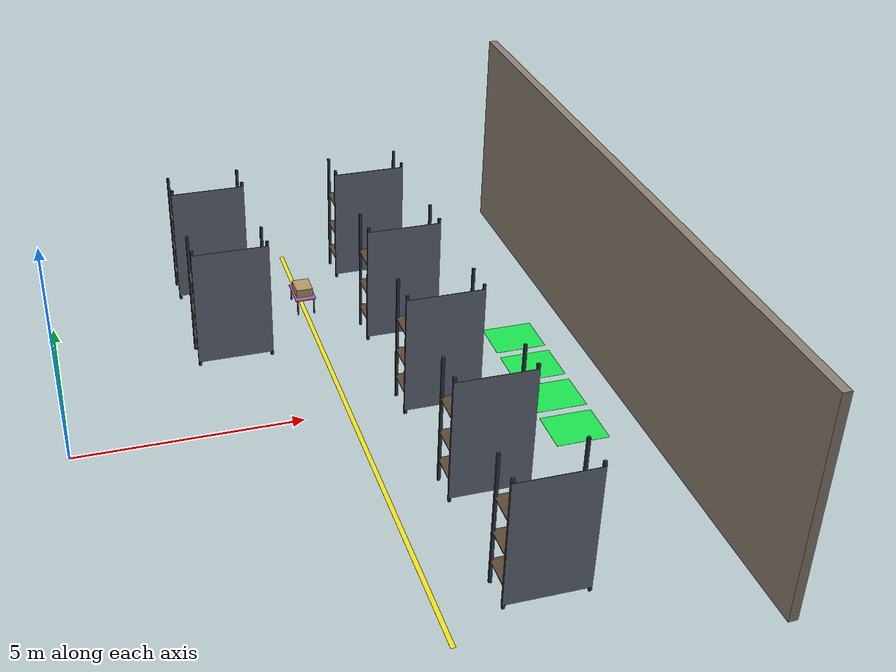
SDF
<sdf version="1.8">
 <world name="warehouse_world">
  <model name="wall_east">
   <static>true</static>
   <pose>12 0 2.5 0 0 0</pose>
   <link name="link">
    <collision name="col"><geometry><box><size>0.2 16 5</size></box></geometry></collision>
    <visual name="vis">
     <geometry><box><size>0.2 16 5</size></box></geometry>
     <material><ambient>0.5 0.45 0.4 1</ambient><diffuse>0.55 0.5 0.45 1</diffuse></material>
    </visual>
   </link>
  </model>
  <model name="rack_C4">
   <static>true</static>
   <pose>4 3 0 0 0 0</pose>
   <link name="link">
    <visual name="u1">
     <pose>0.84 0.34 1.5 0 0 0</pose>
     <geometry><box><size>0.06 0.06 3.0</size></box></geometry>
     <material><ambient>0.15 0.18 0.22 1</ambient><diffuse>0.20 0.22 0.28 1</diffuse></material>
    </visual>
    <collision name="u1c">
     <pose>0.84 0.34 1.5 0 0 0</pose>
     <geometry><box><size>0.06 0.06 3.0</size></box></geometry>
    </collision>
    <visual name="u2">
     <pose>0.84 -0.34 1.5 0 0 0</pose>
     <geometry><box><size>0.06 0.06 3.0</size></box></geometry>
     <material><ambient>0.15 0.18 0.22 1</ambient><diffuse>0.20 0.22 0.28 1</diffuse></material>
    </visual>
    <collision name="u2c">
     <pose>0.84 -0.34 1.5 0 0 0</pose>
     <geometry><box><size>0.06 0.06 3.0</size></box></geometry>
    </collision>
    <visual name="u3">
     <pose>-0.84 0.34 1.5 0 0 0</pose>
     <geometry><box><size>0.06 0.06 3.0</size></box></geometry>
     <material><ambient>0.15 0.18 0.22 1</ambient><diffuse>0.20 0.22 0.28 1</diffuse></material>
    </visual>
    <collision name="u3c">
     <pose>-0.84 0.34 1.5 0 0 0</pose>
     <geometry><box><size>0.06 0.06 3.0</size></box></geometry>
    </collision>
    <visual name="u4">
     <pose>-0.84 -0.34 1.5 0 0 0</pose>
     <geometry><box><size>0.06 0.06 3.0</size></box></geometry>
     <material><ambient>0.15 0.18 0.22 1</ambient><diffuse>0.20 0.22 0.28 1</diffuse></material>
    </visual>
    <collision name="u4c">
     <pose>-0.84 -0.34 1.5 0 0 0</pose>
     <geometry><box><size>0.06 0.06 3.0</size></box></geometry>
    </collision>
    <visual name="b1f">
     <pose>0 0.34 0.50 0 0 0</pose>
     <geometry><box><size>1.74 0.05 0.06</size></box></geometry>
     <material><ambient>0.90 0.45 0.05 1</ambient><diffuse>0.92 0.48 0.08 1</diffuse></material>
    </visual>
    <collision name="b1fc">
     <pose>0 0.34 0.50 0 0 0</pose>
     <geometry><box><size>1.74 0.05 0.06</size></box></geometry>
    </collision>
    <visual name="b1b">
     <pose>0 -0.34 0.50 0 0 0</pose>
     <geometry><box><size>1.74 0.05 0.06</size></box></geometry>
     <material><ambient>0.90 0.45 0.05 1</ambient><diffuse>0.92 0.48 0.08 1</diffuse></material>
    </visual>
    <collision name="b1bc">
     <pose>0 -0.34 0.50 0 0 0</pose>
     <geometry><box><size>1.74 0.05 0.06</size></box></geometry>
    </collision>
    <visual name="d1">
     <pose>0 0 0.54 0 0 0</pose>
     <geometry><box><size>1.74 0.74 0.02</size></box></geometry>
     <material><ambient>0.30 0.25 0.18 1</ambient><diffuse>0.35 0.28 0.20 1</diffuse></material>
    </visual>
    <collision name="d1c">
     <pose>0 0 0.54 0 0 0</pose>
     <geometry><box><size>1.74 0.74 0.02</size></box></geometry>
    </collision>
    <visual name="b2f">
     <pose>0 0.34 1.20 0 0 0</pose>
     <geometry><box><size>1.74 0.05 0.06</size></box></geometry>
     <material><ambient>0.90 0.45 0.05 1</ambient><diffuse>0.92 0.48 0.08 1</diffuse></material>
    </visual>
    <collision name="b2fc">
     <pose>0 0.34 1.20 0 0 0</pose>
     <geometry><box><size>1.74 0.05 0.06</size></box></geometry>
    </collision>
    <visual name="b2b">
     <pose>0 -0.34 1.20 0 0 0</pose>
     <geometry><box><size>1.74 0.05 0.06</size></box></geometry>
     <material><ambient>0.90 0.45 0.05 1</ambient><diffuse>0.92 0.48 0.08 1</diffuse></material>
    </visual>
    <collision name="b2bc">
     <pose>0 -0.34 1.20 0 0 0</pose>
     <geometry><box><size>1.74 0.05 0.06</size></box></geometry>
    </collision>
    <visual name="d2">
     <pose>0 0 1.24 0 0 0</pose>
     <geometry><box><size>1.74 0.74 0.02</size></box></geometry>
     <material><ambient>0.30 0.25 0.18 1</ambient><diffuse>0.35 0.28 0.20 1</diffuse></material>
    </visual>
    <collision name="d2c">
     <pose>0 0 1.24 0 0 0</pose>
     <geometry><box><size>1.74 0.74 0.02</size></box></geometry>
    </collision>
    <visual name="b3f">
     <pose>0 0.34 2.00 0 0 0</pose>
     <geometry><box><size>1.74 0.05 0.06</size></box></geometry>
     <material><ambient>0.90 0.45 0.05 1</ambient><diffuse>0.92 0.48 0.08 1</diffuse></material>
    </visual>
    <collision name="b3fc">
     <pose>0 0.34 2.00 0 0 0</pose>
     <geometry><box><size>1.74 0.05 0.06</size></box></geometry>
    </collision>
    <visual name="b3b">
     <pose>0 -0.34 2.00 0 0 0</pose>
     <geometry><box><size>1.74 0.05 0.06</size></box></geometry>
     <material><ambient>0.90 0.45 0.05 1</ambient><diffuse>0.92 0.48 0.08 1</diffuse></material>
    </visual>
    <collision name="b3bc">
     <pose>0 -0.34 2.00 0 0 0</pose>
     <geometry><box><size>1.74 0.05 0.06</size></box></geometry>
    </collision>
    <visual name="d3">
     <pose>0 0 2.04 0 0 0</pose>
     <geometry><box><size>1.74 0.74 0.02</size></box></geometry>
     <material><ambient>0.30 0.25 0.18 1</ambient><diffuse>0.35 0.28 0.20 1</diffuse></material>
    </visual>
    <collision name="d3c">
     <pose>0 0 2.04 0 0 0</pose>
     <geometry><box><size>1.74 0.74 0.02</size></box></geometry>
    </collision>
    <visual name="brace">
     <pose>0 -0.37 1.5 0 0 0</pose>
     <geometry><box><size>1.74 0.01 2.8</size></box></geometry>
     <material><ambient>0.35 0.38 0.45 1</ambient><diffuse>0.40 0.43 0.50 1</diffuse></material>
    </visual>
   </link>
  </model>
  <model name="rack_C5">
   <static>true</static>
   <pose>4 6 0 0 0 0</pose>
   <link name="link">
    <visual name="u1">
     <pose>0.84 0.34 1.5 0 0 0</pose>
     <geometry><box><size>0.06 0.06 3.0</size></box></geometry>
     <material><ambient>0.15 0.18 0.22 1</ambient><diffuse>0.20 0.22 0.28 1</diffuse></material>
    </visual>
    <collision name="u1c">
     <pose>0.84 0.34 1.5 0 0 0</pose>
     <geometry><box><size>0.06 0.06 3.0</size></box></geometry>
    </collision>
    <visual name="u2">
     <pose>0.84 -0.34 1.5 0 0 0</pose>
     <geometry><box><size>0.06 0.06 3.0</size></box></geometry>
     <material><ambient>0.15 0.18 0.22 1</ambient><diffuse>0.20 0.22 0.28 1</diffuse></material>
    </visual>
    <collision name="u2c">
     <pose>0.84 -0.34 1.5 0 0 0</pose>
     <geometry><box><size>0.06 0.06 3.0</size></box></geometry>
    </collision>
    <visual name="u3">
     <pose>-0.84 0.34 1.5 0 0 0</pose>
     <geometry><box><size>0.06 0.06 3.0</size></box></geometry>
     <material><ambient>0.15 0.18 0.22 1</ambient><diffuse>0.20 0.22 0.28 1</diffuse></material>
    </visual>
    <collision name="u3c">
     <pose>-0.84 0.34 1.5 0 0 0</pose>
     <geometry><box><size>0.06 0.06 3.0</size></box></geometry>
    </collision>
    <visual name="u4">
     <pose>-0.84 -0.34 1.5 0 0 0</pose>
     <geometry><box><size>0.06 0.06 3.0</size></box></geometry>
     <material><ambient>0.15 0.18 0.22 1</ambient><diffuse>0.20 0.22 0.28 1</diffuse></material>
    </visual>
    <collision name="u4c">
     <pose>-0.84 -0.34 1.5 0 0 0</pose>
     <geometry><box><size>0.06 0.06 3.0</size></box></geometry>
    </collision>
    <visual name="b1f">
     <pose>0 0.34 0.50 0 0 0</pose>
     <geometry><box><size>1.74 0.05 0.06</size></box></geometry>
     <material><ambient>0.90 0.45 0.05 1</ambient><diffuse>0.92 0.48 0.08 1</diffuse></material>
    </visual>
    <collision name="b1fc">
     <pose>0 0.34 0.50 0 0 0</pose>
     <geometry><box><size>1.74 0.05 0.06</size></box></geometry>
    </collision>
    <visual name="b1b">
     <pose>0 -0.34 0.50 0 0 0</pose>
     <geometry><box><size>1.74 0.05 0.06</size></box></geometry>
     <material><ambient>0.90 0.45 0.05 1</ambient><diffuse>0.92 0.48 0.08 1</diffuse></material>
    </visual>
    <collision name="b1bc">
     <pose>0 -0.34 0.50 0 0 0</pose>
     <geometry><box><size>1.74 0.05 0.06</size></box></geometry>
    </collision>
    <visual name="d1">
     <pose>0 0 0.54 0 0 0</pose>
     <geometry><box><size>1.74 0.74 0.02</size></box></geometry>
     <material><ambient>0.30 0.25 0.18 1</ambient><diffuse>0.35 0.28 0.20 1</diffuse></material>
    </visual>
    <collision name="d1c">
     <pose>0 0 0.54 0 0 0</pose>
     <geometry><box><size>1.74 0.74 0.02</size></box></geometry>
    </collision>
    <visual name="b2f">
     <pose>0 0.34 1.20 0 0 0</pose>
     <geometry><box><size>1.74 0.05 0.06</size></box></geometry>
     <material><ambient>0.90 0.45 0.05 1</ambient><diffuse>0.92 0.48 0.08 1</diffuse></material>
    </visual>
    <collision name="b2fc">
     <pose>0 0.34 1.20 0 0 0</pose>
     <geometry><box><size>1.74 0.05 0.06</size></box></geometry>
    </collision>
    <visual name="b2b">
     <pose>0 -0.34 1.20 0 0 0</pose>
     <geometry><box><size>1.74 0.05 0.06</size></box></geometry>
     <material><ambient>0.90 0.45 0.05 1</ambient><diffuse>0.92 0.48 0.08 1</diffuse></material>
    </visual>
    <collision name="b2bc">
     <pose>0 -0.34 1.20 0 0 0</pose>
     <geometry><box><size>1.74 0.05 0.06</size></box></geometry>
    </collision>
    <visual name="d2">
     <pose>0 0 1.24 0 0 0</pose>
     <geometry><box><size>1.74 0.74 0.02</size></box></geometry>
     <material><ambient>0.30 0.25 0.18 1</ambient><diffuse>0.35 0.28 0.20 1</diffuse></material>
    </visual>
    <collision name="d2c">
     <pose>0 0 1.24 0 0 0</pose>
     <geometry><box><size>1.74 0.74 0.02</size></box></geometry>
    </collision>
    <visual name="b3f">
     <pose>0 0.34 2.00 0 0 0</pose>
     <geometry><box><size>1.74 0.05 0.06</size></box></geometry>
     <material><ambient>0.90 0.45 0.05 1</ambient><diffuse>0.92 0.48 0.08 1</diffuse></material>
    </visual>
    <collision name="b3fc">
     <pose>0 0.34 2.00 0 0 0</pose>
     <geometry><box><size>1.74 0.05 0.06</size></box></geometry>
    </collision>
    <visual name="b3b">
     <pose>0 -0.34 2.00 0 0 0</pose>
     <geometry><box><size>1.74 0.05 0.06</size></box></geometry>
     <material><ambient>0.90 0.45 0.05 1</ambient><diffuse>0.92 0.48 0.08 1</diffuse></material>
    </visual>
    <collision name="b3bc">
     <pose>0 -0.34 2.00 0 0 0</pose>
     <geometry><box><size>1.74 0.05 0.06</size></box></geometry>
    </collision>
    <visual name="d3">
     <pose>0 0 2.04 0 0 0</pose>
     <geometry><box><size>1.74 0.74 0.02</size></box></geometry>
     <material><ambient>0.30 0.25 0.18 1</ambient><diffuse>0.35 0.28 0.20 1</diffuse></material>
    </visual>
    <collision name="d3c">
     <pose>0 0 2.04 0 0 0</pose>
     <geometry><box><size>1.74 0.74 0.02</size></box></geometry>
    </collision>
    <visual name="brace">
     <pose>0 -0.37 1.5 0 0 0</pose>
     <geometry><box><size>1.74 0.01 2.8</size></box></geometry>
     <material><ambient>0.35 0.38 0.45 1</ambient><diffuse>0.40 0.43 0.50 1</diffuse></material>
    </visual>
   </link>
  </model>
  <model name="rack_D1">
   <static>true</static>
   <pose>8 -6 0 0 0 0</pose>
   <link name="link">
    <visual name="u1">
     <pose>0.84 0.34 1.5 0 0 0</pose>
     <geometry><box><size>0.06 0.06 3.0</size></box></geometry>
     <material><ambient>0.15 0.18 0.22 1</ambient><diffuse>0.20 0.22 0.28 1</diffuse></material>
    </visual>
    <collision name="u1c">
     <pose>0.84 0.34 1.5 0 0 0</pose>
     <geometry><box><size>0.06 0.06 3.0</size></box></geometry>
    </collision>
    <visual name="u2">
     <pose>0.84 -0.34 1.5 0 0 0</pose>
     <geometry><box><size>0.06 0.06 3.0</size></box></geometry>
     <material><ambient>0.15 0.18 0.22 1</ambient><diffuse>0.20 0.22 0.28 1</diffuse></material>
    </visual>
    <collision name="u2c">
     <pose>0.84 -0.34 1.5 0 0 0</pose>
     <geometry><box><size>0.06 0.06 3.0</size></box></geometry>
    </collision>
    <visual name="u3">
     <pose>-0.84 0.34 1.5 0 0 0</pose>
     <geometry><box><size>0.06 0.06 3.0</size></box></geometry>
     <material><ambient>0.15 0.18 0.22 1</ambient><diffuse>0.20 0.22 0.28 1</diffuse></material>
    </visual>
    <collision name="u3c">
     <pose>-0.84 0.34 1.5 0 0 0</pose>
     <geometry><box><size>0.06 0.06 3.0</size></box></geometry>
    </collision>
    <visual name="u4">
     <pose>-0.84 -0.34 1.5 0 0 0</pose>
     <geometry><box><size>0.06 0.06 3.0</size></box></geometry>
     <material><ambient>0.15 0.18 0.22 1</ambient><diffuse>0.20 0.22 0.28 1</diffuse></material>
    </visual>
    <collision name="u4c">
     <pose>-0.84 -0.34 1.5 0 0 0</pose>
     <geometry><box><size>0.06 0.06 3.0</size></box></geometry>
    </collision>
    <visual name="b1f">
     <pose>0 0.34 0.50 0 0 0</pose>
     <geometry><box><size>1.74 0.05 0.06</size></box></geometry>
     <material><ambient>0.90 0.45 0.05 1</ambient><diffuse>0.92 0.48 0.08 1</diffuse></material>
    </visual>
    <collision name="b1fc">
     <pose>0 0.34 0.50 0 0 0</pose>
     <geometry><box><size>1.74 0.05 0.06</size></box></geometry>
    </collision>
    <visual name="b1b">
     <pose>0 -0.34 0.50 0 0 0</pose>
     <geometry><box><size>1.74 0.05 0.06</size></box></geometry>
     <material><ambient>0.90 0.45 0.05 1</ambient><diffuse>0.92 0.48 0.08 1</diffuse></material>
    </visual>
    <collision name="b1bc">
     <pose>0 -0.34 0.50 0 0 0</pose>
     <geometry><box><size>1.74 0.05 0.06</size></box></geometry>
    </collision>
    <visual name="d1">
     <pose>0 0 0.54 0 0 0</pose>
     <geometry><box><size>1.74 0.74 0.02</size></box></geometry>
     <material><ambient>0.30 0.25 0.18 1</ambient><diffuse>0.35 0.28 0.20 1</diffuse></material>
    </visual>
    <collision name="d1c">
     <pose>0 0 0.54 0 0 0</pose>
     <geometry><box><size>1.74 0.74 0.02</size></box></geometry>
    </collision>
    <visual name="b2f">
     <pose>0 0.34 1.20 0 0 0</pose>
     <geometry><box><size>1.74 0.05 0.06</size></box></geometry>
     <material><ambient>0.90 0.45 0.05 1</ambient><diffuse>0.92 0.48 0.08 1</diffuse></material>
    </visual>
    <collision name="b2fc">
     <pose>0 0.34 1.20 0 0 0</pose>
     <geometry><box><size>1.74 0.05 0.06</size></box></geometry>
    </collision>
    <visual name="b2b">
     <pose>0 -0.34 1.20 0 0 0</pose>
     <geometry><box><size>1.74 0.05 0.06</size></box></geometry>
     <material><ambient>0.90 0.45 0.05 1</ambient><diffuse>0.92 0.48 0.08 1</diffuse></material>
    </visual>
    <collision name="b2bc">
     <pose>0 -0.34 1.20 0 0 0</pose>
     <geometry><box><size>1.74 0.05 0.06</size></box></geometry>
    </collision>
    <visual name="d2">
     <pose>0 0 1.24 0 0 0</pose>
     <geometry><box><size>1.74 0.74 0.02</size></box></geometry>
     <material><ambient>0.30 0.25 0.18 1</ambient><diffuse>0.35 0.28 0.20 1</diffuse></material>
    </visual>
    <collision name="d2c">
     <pose>0 0 1.24 0 0 0</pose>
     <geometry><box><size>1.74 0.74 0.02</size></box></geometry>
    </collision>
    <visual name="b3f">
     <pose>0 0.34 2.00 0 0 0</pose>
     <geometry><box><size>1.74 0.05 0.06</size></box></geometry>
     <material><ambient>0.90 0.45 0.05 1</ambient><diffuse>0.92 0.48 0.08 1</diffuse></material>
    </visual>
    <collision name="b3fc">
     <pose>0 0.34 2.00 0 0 0</pose>
     <geometry><box><size>1.74 0.05 0.06</size></box></geometry>
    </collision>
    <visual name="b3b">
     <pose>0 -0.34 2.00 0 0 0</pose>
     <geometry><box><size>1.74 0.05 0.06</size></box></geometry>
     <material><ambient>0.90 0.45 0.05 1</ambient><diffuse>0.92 0.48 0.08 1</diffuse></material>
    </visual>
    <collision name="b3bc">
     <pose>0 -0.34 2.00 0 0 0</pose>
     <geometry><box><size>1.74 0.05 0.06</size></box></geometry>
    </collision>
    <visual name="d3">
     <pose>0 0 2.04 0 0 0</pose>
     <geometry><box><size>1.74 0.74 0.02</size></box></geometry>
     <material><ambient>0.30 0.25 0.18 1</ambient><diffuse>0.35 0.28 0.20 1</diffuse></material>
    </visual>
    <collision name="d3c">
     <pose>0 0 2.04 0 0 0</pose>
     <geometry><box><size>1.74 0.74 0.02</size></box></geometry>
    </collision>
    <visual name="brace">
     <pose>0 -0.37 1.5 0 0 0</pose>
     <geometry><box><size>1.74 0.01 2.8</size></box></geometry>
     <material><ambient>0.35 0.38 0.45 1</ambient><diffuse>0.40 0.43 0.50 1</diffuse></material>
    </visual>
   </link>
  </model>
  <model name="rack_D2">
   <static>true</static>
   <pose>8 -3 0 0 0 0</pose>
   <link name="link">
    <visual name="u1">
     <pose>0.84 0.34 1.5 0 0 0</pose>
     <geometry><box><size>0.06 0.06 3.0</size></box></geometry>
     <material><ambient>0.15 0.18 0.22 1</ambient><diffuse>0.20 0.22 0.28 1</diffuse></material>
    </visual>
    <collision name="u1c">
     <pose>0.84 0.34 1.5 0 0 0</pose>
     <geometry><box><size>0.06 0.06 3.0</size></box></geometry>
    </collision>
    <visual name="u2">
     <pose>0.84 -0.34 1.5 0 0 0</pose>
     <geometry><box><size>0.06 0.06 3.0</size></box></geometry>
     <material><ambient>0.15 0.18 0.22 1</ambient><diffuse>0.20 0.22 0.28 1</diffuse></material>
    </visual>
    <collision name="u2c">
     <pose>0.84 -0.34 1.5 0 0 0</pose>
     <geometry><box><size>0.06 0.06 3.0</size></box></geometry>
    </collision>
    <visual name="u3">
     <pose>-0.84 0.34 1.5 0 0 0</pose>
     <geometry><box><size>0.06 0.06 3.0</size></box></geometry>
     <material><ambient>0.15 0.18 0.22 1</ambient><diffuse>0.20 0.22 0.28 1</diffuse></material>
    </visual>
    <collision name="u3c">
     <pose>-0.84 0.34 1.5 0 0 0</pose>
     <geometry><box><size>0.06 0.06 3.0</size></box></geometry>
    </collision>
    <visual name="u4">
     <pose>-0.84 -0.34 1.5 0 0 0</pose>
     <geometry><box><size>0.06 0.06 3.0</size></box></geometry>
     <material><ambient>0.15 0.18 0.22 1</ambient><diffuse>0.20 0.22 0.28 1</diffuse></material>
    </visual>
    <collision name="u4c">
     <pose>-0.84 -0.34 1.5 0 0 0</pose>
     <geometry><box><size>0.06 0.06 3.0</size></box></geometry>
    </collision>
    <visual name="b1f">
     <pose>0 0.34 0.50 0 0 0</pose>
     <geometry><box><size>1.74 0.05 0.06</size></box></geometry>
     <material><ambient>0.90 0.45 0.05 1</ambient><diffuse>0.92 0.48 0.08 1</diffuse></material>
    </visual>
    <collision name="b1fc">
     <pose>0 0.34 0.50 0 0 0</pose>
     <geometry><box><size>1.74 0.05 0.06</size></box></geometry>
    </collision>
    <visual name="b1b">
     <pose>0 -0.34 0.50 0 0 0</pose>
     <geometry><box><size>1.74 0.05 0.06</size></box></geometry>
     <material><ambient>0.90 0.45 0.05 1</ambient><diffuse>0.92 0.48 0.08 1</diffuse></material>
    </visual>
    <collision name="b1bc">
     <pose>0 -0.34 0.50 0 0 0</pose>
     <geometry><box><size>1.74 0.05 0.06</size></box></geometry>
    </collision>
    <visual name="d1">
     <pose>0 0 0.54 0 0 0</pose>
     <geometry><box><size>1.74 0.74 0.02</size></box></geometry>
     <material><ambient>0.30 0.25 0.18 1</ambient><diffuse>0.35 0.28 0.20 1</diffuse></material>
    </visual>
    <collision name="d1c">
     <pose>0 0 0.54 0 0 0</pose>
     <geometry><box><size>1.74 0.74 0.02</size></box></geometry>
    </collision>
    <visual name="b2f">
     <pose>0 0.34 1.20 0 0 0</pose>
     <geometry><box><size>1.74 0.05 0.06</size></box></geometry>
     <material><ambient>0.90 0.45 0.05 1</ambient><diffuse>0.92 0.48 0.08 1</diffuse></material>
    </visual>
    <collision name="b2fc">
     <pose>0 0.34 1.20 0 0 0</pose>
     <geometry><box><size>1.74 0.05 0.06</size></box></geometry>
    </collision>
    <visual name="b2b">
     <pose>0 -0.34 1.20 0 0 0</pose>
     <geometry><box><size>1.74 0.05 0.06</size></box></geometry>
     <material><ambient>0.90 0.45 0.05 1</ambient><diffuse>0.92 0.48 0.08 1</diffuse></material>
    </visual>
    <collision name="b2bc">
     <pose>0 -0.34 1.20 0 0 0</pose>
     <geometry><box><size>1.74 0.05 0.06</size></box></geometry>
    </collision>
    <visual name="d2">
     <pose>0 0 1.24 0 0 0</pose>
     <geometry><box><size>1.74 0.74 0.02</size></box></geometry>
     <material><ambient>0.30 0.25 0.18 1</ambient><diffuse>0.35 0.28 0.20 1</diffuse></material>
    </visual>
    <collision name="d2c">
     <pose>0 0 1.24 0 0 0</pose>
     <geometry><box><size>1.74 0.74 0.02</size></box></geometry>
    </collision>
    <visual name="b3f">
     <pose>0 0.34 2.00 0 0 0</pose>
     <geometry><box><size>1.74 0.05 0.06</size></box></geometry>
     <material><ambient>0.90 0.45 0.05 1</ambient><diffuse>0.92 0.48 0.08 1</diffuse></material>
    </visual>
    <collision name="b3fc">
     <pose>0 0.34 2.00 0 0 0</pose>
     <geometry><box><size>1.74 0.05 0.06</size></box></geometry>
    </collision>
    <visual name="b3b">
     <pose>0 -0.34 2.00 0 0 0</pose>
     <geometry><box><size>1.74 0.05 0.06</size></box></geometry>
     <material><ambient>0.90 0.45 0.05 1</ambient><diffuse>0.92 0.48 0.08 1</diffuse></material>
    </visual>
    <collision name="b3bc">
     <pose>0 -0.34 2.00 0 0 0</pose>
     <geometry><box><size>1.74 0.05 0.06</size></box></geometry>
    </collision>
    <visual name="d3">
     <pose>0 0 2.04 0 0 0</pose>
     <geometry><box><size>1.74 0.74 0.02</size></box></geometry>
     <material><ambient>0.30 0.25 0.18 1</ambient><diffuse>0.35 0.28 0.20 1</diffuse></material>
    </visual>
    <collision name="d3c">
     <pose>0 0 2.04 0 0 0</pose>
     <geometry><box><size>1.74 0.74 0.02</size></box></geometry>
    </collision>
    <visual name="brace">
     <pose>0 -0.37 1.5 0 0 0</pose>
     <geometry><box><size>1.74 0.01 2.8</size></box></geometry>
     <material><ambient>0.35 0.38 0.45 1</ambient><diffuse>0.40 0.43 0.50 1</diffuse></material>
    </visual>
   </link>
  </model>
  <model name="rack_D3">
   <static>true</static>
   <pose>8 0 0 0 0 0</pose>
   <link name="link">
    <visual name="u1">
     <pose>0.84 0.34 1.5 0 0 0</pose>
     <geometry><box><size>0.06 0.06 3.0</size></box></geometry>
     <material><ambient>0.15 0.18 0.22 1</ambient><diffuse>0.20 0.22 0.28 1</diffuse></material>
    </visual>
    <collision name="u1c">
     <pose>0.84 0.34 1.5 0 0 0</pose>
     <geometry><box><size>0.06 0.06 3.0</size></box></geometry>
    </collision>
    <visual name="u2">
     <pose>0.84 -0.34 1.5 0 0 0</pose>
     <geometry><box><size>0.06 0.06 3.0</size></box></geometry>
     <material><ambient>0.15 0.18 0.22 1</ambient><diffuse>0.20 0.22 0.28 1</diffuse></material>
    </visual>
    <collision name="u2c">
     <pose>0.84 -0.34 1.5 0 0 0</pose>
     <geometry><box><size>0.06 0.06 3.0</size></box></geometry>
    </collision>
    <visual name="u3">
     <pose>-0.84 0.34 1.5 0 0 0</pose>
     <geometry><box><size>0.06 0.06 3.0</size></box></geometry>
     <material><ambient>0.15 0.18 0.22 1</ambient><diffuse>0.20 0.22 0.28 1</diffuse></material>
    </visual>
    <collision name="u3c">
     <pose>-0.84 0.34 1.5 0 0 0</pose>
     <geometry><box><size>0.06 0.06 3.0</size></box></geometry>
    </collision>
    <visual name="u4">
     <pose>-0.84 -0.34 1.5 0 0 0</pose>
     <geometry><box><size>0.06 0.06 3.0</size></box></geometry>
     <material><ambient>0.15 0.18 0.22 1</ambient><diffuse>0.20 0.22 0.28 1</diffuse></material>
    </visual>
    <collision name="u4c">
     <pose>-0.84 -0.34 1.5 0 0 0</pose>
     <geometry><box><size>0.06 0.06 3.0</size></box></geometry>
    </collision>
    <visual name="b1f">
     <pose>0 0.34 0.50 0 0 0</pose>
     <geometry><box><size>1.74 0.05 0.06</size></box></geometry>
     <material><ambient>0.90 0.45 0.05 1</ambient><diffuse>0.92 0.48 0.08 1</diffuse></material>
    </visual>
    <collision name="b1fc">
     <pose>0 0.34 0.50 0 0 0</pose>
     <geometry><box><size>1.74 0.05 0.06</size></box></geometry>
    </collision>
    <visual name="b1b">
     <pose>0 -0.34 0.50 0 0 0</pose>
     <geometry><box><size>1.74 0.05 0.06</size></box></geometry>
     <material><ambient>0.90 0.45 0.05 1</ambient><diffuse>0.92 0.48 0.08 1</diffuse></material>
    </visual>
    <collision name="b1bc">
     <pose>0 -0.34 0.50 0 0 0</pose>
     <geometry><box><size>1.74 0.05 0.06</size></box></geometry>
    </collision>
    <visual name="d1">
     <pose>0 0 0.54 0 0 0</pose>
     <geometry><box><size>1.74 0.74 0.02</size></box></geometry>
     <material><ambient>0.30 0.25 0.18 1</ambient><diffuse>0.35 0.28 0.20 1</diffuse></material>
    </visual>
    <collision name="d1c">
     <pose>0 0 0.54 0 0 0</pose>
     <geometry><box><size>1.74 0.74 0.02</size></box></geometry>
    </collision>
    <visual name="b2f">
     <pose>0 0.34 1.20 0 0 0</pose>
     <geometry><box><size>1.74 0.05 0.06</size></box></geometry>
     <material><ambient>0.90 0.45 0.05 1</ambient><diffuse>0.92 0.48 0.08 1</diffuse></material>
    </visual>
    <collision name="b2fc">
     <pose>0 0.34 1.20 0 0 0</pose>
     <geometry><box><size>1.74 0.05 0.06</size></box></geometry>
    </collision>
    <visual name="b2b">
     <pose>0 -0.34 1.20 0 0 0</pose>
     <geometry><box><size>1.74 0.05 0.06</size></box></geometry>
     <material><ambient>0.90 0.45 0.05 1</ambient><diffuse>0.92 0.48 0.08 1</diffuse></material>
    </visual>
    <collision name="b2bc">
     <pose>0 -0.34 1.20 0 0 0</pose>
     <geometry><box><size>1.74 0.05 0.06</size></box></geometry>
    </collision>
    <visual name="d2">
     <pose>0 0 1.24 0 0 0</pose>
     <geometry><box><size>1.74 0.74 0.02</size></box></geometry>
     <material><ambient>0.30 0.25 0.18 1</ambient><diffuse>0.35 0.28 0.20 1</diffuse></material>
    </visual>
    <collision name="d2c">
     <pose>0 0 1.24 0 0 0</pose>
     <geometry><box><size>1.74 0.74 0.02</size></box></geometry>
    </collision>
    <visual name="b3f">
     <pose>0 0.34 2.00 0 0 0</pose>
     <geometry><box><size>1.74 0.05 0.06</size></box></geometry>
     <material><ambient>0.90 0.45 0.05 1</ambient><diffuse>0.92 0.48 0.08 1</diffuse></material>
    </visual>
    <collision name="b3fc">
     <pose>0 0.34 2.00 0 0 0</pose>
     <geometry><box><size>1.74 0.05 0.06</size></box></geometry>
    </collision>
    <visual name="b3b">
     <pose>0 -0.34 2.00 0 0 0</pose>
     <geometry><box><size>1.74 0.05 0.06</size></box></geometry>
     <material><ambient>0.90 0.45 0.05 1</ambient><diffuse>0.92 0.48 0.08 1</diffuse></material>
    </visual>
    <collision name="b3bc">
     <pose>0 -0.34 2.00 0 0 0</pose>
     <geometry><box><size>1.74 0.05 0.06</size></box></geometry>
    </collision>
    <visual name="d3">
     <pose>0 0 2.04 0 0 0</pose>
     <geometry><box><size>1.74 0.74 0.02</size></box></geometry>
     <material><ambient>0.30 0.25 0.18 1</ambient><diffuse>0.35 0.28 0.20 1</diffuse></material>
    </visual>
    <collision name="d3c">
     <pose>0 0 2.04 0 0 0</pose>
     <geometry><box><size>1.74 0.74 0.02</size></box></geometry>
    </collision>
    <visual name="brace">
     <pose>0 -0.37 1.5 0 0 0</pose>
     <geometry><box><size>1.74 0.01 2.8</size></box></geometry>
     <material><ambient>0.35 0.38 0.45 1</ambient><diffuse>0.40 0.43 0.50 1</diffuse></material>
    </visual>
   </link>
  </model>
  <model name="rack_D4">
   <static>true</static>
   <pose>8 3 0 0 0 0</pose>
   <link name="link">
    <visual name="u1">
     <pose>0.84 0.34 1.5 0 0 0</pose>
     <geometry><box><size>0.06 0.06 3.0</size></box></geometry>
     <material><ambient>0.15 0.18 0.22 1</ambient><diffuse>0.20 0.22 0.28 1</diffuse></material>
    </visual>
    <collision name="u1c">
     <pose>0.84 0.34 1.5 0 0 0</pose>
     <geometry><box><size>0.06 0.06 3.0</size></box></geometry>
    </collision>
    <visual name="u2">
     <pose>0.84 -0.34 1.5 0 0 0</pose>
     <geometry><box><size>0.06 0.06 3.0</size></box></geometry>
     <material><ambient>0.15 0.18 0.22 1</ambient><diffuse>0.20 0.22 0.28 1</diffuse></material>
    </visual>
    <collision name="u2c">
     <pose>0.84 -0.34 1.5 0 0 0</pose>
     <geometry><box><size>0.06 0.06 3.0</size></box></geometry>
    </collision>
    <visual name="u3">
     <pose>-0.84 0.34 1.5 0 0 0</pose>
     <geometry><box><size>0.06 0.06 3.0</size></box></geometry>
     <material><ambient>0.15 0.18 0.22 1</ambient><diffuse>0.20 0.22 0.28 1</diffuse></material>
    </visual>
    <collision name="u3c">
     <pose>-0.84 0.34 1.5 0 0 0</pose>
     <geometry><box><size>0.06 0.06 3.0</size></box></geometry>
    </collision>
    <visual name="u4">
     <pose>-0.84 -0.34 1.5 0 0 0</pose>
     <geometry><box><size>0.06 0.06 3.0</size></box></geometry>
     <material><ambient>0.15 0.18 0.22 1</ambient><diffuse>0.20 0.22 0.28 1</diffuse></material>
    </visual>
    <collision name="u4c">
     <pose>-0.84 -0.34 1.5 0 0 0</pose>
     <geometry><box><size>0.06 0.06 3.0</size></box></geometry>
    </collision>
    <visual name="b1f">
     <pose>0 0.34 0.50 0 0 0</pose>
     <geometry><box><size>1.74 0.05 0.06</size></box></geometry>
     <material><ambient>0.90 0.45 0.05 1</ambient><diffuse>0.92 0.48 0.08 1</diffuse></material>
    </visual>
    <collision name="b1fc">
     <pose>0 0.34 0.50 0 0 0</pose>
     <geometry><box><size>1.74 0.05 0.06</size></box></geometry>
    </collision>
    <visual name="b1b">
     <pose>0 -0.34 0.50 0 0 0</pose>
     <geometry><box><size>1.74 0.05 0.06</size></box></geometry>
     <material><ambient>0.90 0.45 0.05 1</ambient><diffuse>0.92 0.48 0.08 1</diffuse></material>
    </visual>
    <collision name="b1bc">
     <pose>0 -0.34 0.50 0 0 0</pose>
     <geometry><box><size>1.74 0.05 0.06</size></box></geometry>
    </collision>
    <visual name="d1">
     <pose>0 0 0.54 0 0 0</pose>
     <geometry><box><size>1.74 0.74 0.02</size></box></geometry>
     <material><ambient>0.30 0.25 0.18 1</ambient><diffuse>0.35 0.28 0.20 1</diffuse></material>
    </visual>
    <collision name="d1c">
     <pose>0 0 0.54 0 0 0</pose>
     <geometry><box><size>1.74 0.74 0.02</size></box></geometry>
    </collision>
    <visual name="b2f">
     <pose>0 0.34 1.20 0 0 0</pose>
     <geometry><box><size>1.74 0.05 0.06</size></box></geometry>
     <material><ambient>0.90 0.45 0.05 1</ambient><diffuse>0.92 0.48 0.08 1</diffuse></material>
    </visual>
    <collision name="b2fc">
     <pose>0 0.34 1.20 0 0 0</pose>
     <geometry><box><size>1.74 0.05 0.06</size></box></geometry>
    </collision>
    <visual name="b2b">
     <pose>0 -0.34 1.20 0 0 0</pose>
     <geometry><box><size>1.74 0.05 0.06</size></box></geometry>
     <material><ambient>0.90 0.45 0.05 1</ambient><diffuse>0.92 0.48 0.08 1</diffuse></material>
    </visual>
    <collision name="b2bc">
     <pose>0 -0.34 1.20 0 0 0</pose>
     <geometry><box><size>1.74 0.05 0.06</size></box></geometry>
    </collision>
    <visual name="d2">
     <pose>0 0 1.24 0 0 0</pose>
     <geometry><box><size>1.74 0.74 0.02</size></box></geometry>
     <material><ambient>0.30 0.25 0.18 1</ambient><diffuse>0.35 0.28 0.20 1</diffuse></material>
    </visual>
    <collision name="d2c">
     <pose>0 0 1.24 0 0 0</pose>
     <geometry><box><size>1.74 0.74 0.02</size></box></geometry>
    </collision>
    <visual name="b3f">
     <pose>0 0.34 2.00 0 0 0</pose>
     <geometry><box><size>1.74 0.05 0.06</size></box></geometry>
     <material><ambient>0.90 0.45 0.05 1</ambient><diffuse>0.92 0.48 0.08 1</diffuse></material>
    </visual>
    <collision name="b3fc">
     <pose>0 0.34 2.00 0 0 0</pose>
     <geometry><box><size>1.74 0.05 0.06</size></box></geometry>
    </collision>
    <visual name="b3b">
     <pose>0 -0.34 2.00 0 0 0</pose>
     <geometry><box><size>1.74 0.05 0.06</size></box></geometry>
     <material><ambient>0.90 0.45 0.05 1</ambient><diffuse>0.92 0.48 0.08 1</diffuse></material>
    </visual>
    <collision name="b3bc">
     <pose>0 -0.34 2.00 0 0 0</pose>
     <geometry><box><size>1.74 0.05 0.06</size></box></geometry>
    </collision>
    <visual name="d3">
     <pose>0 0 2.04 0 0 0</pose>
     <geometry><box><size>1.74 0.74 0.02</size></box></geometry>
     <material><ambient>0.30 0.25 0.18 1</ambient><diffuse>0.35 0.28 0.20 1</diffuse></material>
    </visual>
    <collision name="d3c">
     <pose>0 0 2.04 0 0 0</pose>
     <geometry><box><size>1.74 0.74 0.02</size></box></geometry>
    </collision>
    <visual name="brace">
     <pose>0 -0.37 1.5 0 0 0</pose>
     <geometry><box><size>1.74 0.01 2.8</size></box></geometry>
     <material><ambient>0.35 0.38 0.45 1</ambient><diffuse>0.40 0.43 0.50 1</diffuse></material>
    </visual>
   </link>
  </model>
  <model name="rack_D5">
   <static>true</static>
   <pose>8 6 0 0 0 0</pose>
   <link name="link">
    <visual name="u1">
     <pose>0.84 0.34 1.5 0 0 0</pose>
     <geometry><box><size>0.06 0.06 3.0</size></box></geometry>
     <material><ambient>0.15 0.18 0.22 1</ambient><diffuse>0.20 0.22 0.28 1</diffuse></material>
    </visual>
    <collision name="u1c">
     <pose>0.84 0.34 1.5 0 0 0</pose>
     <geometry><box><size>0.06 0.06 3.0</size></box></geometry>
    </collision>
    <visual name="u2">
     <pose>0.84 -0.34 1.5 0 0 0</pose>
     <geometry><box><size>0.06 0.06 3.0</size></box></geometry>
     <material><ambient>0.15 0.18 0.22 1</ambient><diffuse>0.20 0.22 0.28 1</diffuse></material>
    </visual>
    <collision name="u2c">
     <pose>0.84 -0.34 1.5 0 0 0</pose>
     <geometry><box><size>0.06 0.06 3.0</size></box></geometry>
    </collision>
    <visual name="u3">
     <pose>-0.84 0.34 1.5 0 0 0</pose>
     <geometry><box><size>0.06 0.06 3.0</size></box></geometry>
     <material><ambient>0.15 0.18 0.22 1</ambient><diffuse>0.20 0.22 0.28 1</diffuse></material>
    </visual>
    <collision name="u3c">
     <pose>-0.84 0.34 1.5 0 0 0</pose>
     <geometry><box><size>0.06 0.06 3.0</size></box></geometry>
    </collision>
    <visual name="u4">
     <pose>-0.84 -0.34 1.5 0 0 0</pose>
     <geometry><box><size>0.06 0.06 3.0</size></box></geometry>
     <material><ambient>0.15 0.18 0.22 1</ambient><diffuse>0.20 0.22 0.28 1</diffuse></material>
    </visual>
    <collision name="u4c">
     <pose>-0.84 -0.34 1.5 0 0 0</pose>
     <geometry><box><size>0.06 0.06 3.0</size></box></geometry>
    </collision>
    <visual name="b1f">
     <pose>0 0.34 0.50 0 0 0</pose>
     <geometry><box><size>1.74 0.05 0.06</size></box></geometry>
     <material><ambient>0.90 0.45 0.05 1</ambient><diffuse>0.92 0.48 0.08 1</diffuse></material>
    </visual>
    <collision name="b1fc">
     <pose>0 0.34 0.50 0 0 0</pose>
     <geometry><box><size>1.74 0.05 0.06</size></box></geometry>
    </collision>
    <visual name="b1b">
     <pose>0 -0.34 0.50 0 0 0</pose>
     <geometry><box><size>1.74 0.05 0.06</size></box></geometry>
     <material><ambient>0.90 0.45 0.05 1</ambient><diffuse>0.92 0.48 0.08 1</diffuse></material>
    </visual>
    <collision name="b1bc">
     <pose>0 -0.34 0.50 0 0 0</pose>
     <geometry><box><size>1.74 0.05 0.06</size></box></geometry>
    </collision>
    <visual name="d1">
     <pose>0 0 0.54 0 0 0</pose>
     <geometry><box><size>1.74 0.74 0.02</size></box></geometry>
     <material><ambient>0.30 0.25 0.18 1</ambient><diffuse>0.35 0.28 0.20 1</diffuse></material>
    </visual>
    <collision name="d1c">
     <pose>0 0 0.54 0 0 0</pose>
     <geometry><box><size>1.74 0.74 0.02</size></box></geometry>
    </collision>
    <visual name="b2f">
     <pose>0 0.34 1.20 0 0 0</pose>
     <geometry><box><size>1.74 0.05 0.06</size></box></geometry>
     <material><ambient>0.90 0.45 0.05 1</ambient><diffuse>0.92 0.48 0.08 1</diffuse></material>
    </visual>
    <collision name="b2fc">
     <pose>0 0.34 1.20 0 0 0</pose>
     <geometry><box><size>1.74 0.05 0.06</size></box></geometry>
    </collision>
    <visual name="b2b">
     <pose>0 -0.34 1.20 0 0 0</pose>
     <geometry><box><size>1.74 0.05 0.06</size></box></geometry>
     <material><ambient>0.90 0.45 0.05 1</ambient><diffuse>0.92 0.48 0.08 1</diffuse></material>
    </visual>
    <collision name="b2bc">
     <pose>0 -0.34 1.20 0 0 0</pose>
     <geometry><box><size>1.74 0.05 0.06</size></box></geometry>
    </collision>
    <visual name="d2">
     <pose>0 0 1.24 0 0 0</pose>
     <geometry><box><size>1.74 0.74 0.02</size></box></geometry>
     <material><ambient>0.30 0.25 0.18 1</ambient><diffuse>0.35 0.28 0.20 1</diffuse></material>
    </visual>
    <collision name="d2c">
     <pose>0 0 1.24 0 0 0</pose>
     <geometry><box><size>1.74 0.74 0.02</size></box></geometry>
    </collision>
    <visual name="b3f">
     <pose>0 0.34 2.00 0 0 0</pose>
     <geometry><box><size>1.74 0.05 0.06</size></box></geometry>
     <material><ambient>0.90 0.45 0.05 1</ambient><diffuse>0.92 0.48 0.08 1</diffuse></material>
    </visual>
    <collision name="b3fc">
     <pose>0 0.34 2.00 0 0 0</pose>
     <geometry><box><size>1.74 0.05 0.06</size></box></geometry>
    </collision>
    <visual name="b3b">
     <pose>0 -0.34 2.00 0 0 0</pose>
     <geometry><box><size>1.74 0.05 0.06</size></box></geometry>
     <material><ambient>0.90 0.45 0.05 1</ambient><diffuse>0.92 0.48 0.08 1</diffuse></material>
    </visual>
    <collision name="b3bc">
     <pose>0 -0.34 2.00 0 0 0</pose>
     <geometry><box><size>1.74 0.05 0.06</size></box></geometry>
    </collision>
    <visual name="d3">
     <pose>0 0 2.04 0 0 0</pose>
     <geometry><box><size>1.74 0.74 0.02</size></box></geometry>
     <material><ambient>0.30 0.25 0.18 1</ambient><diffuse>0.35 0.28 0.20 1</diffuse></material>
    </visual>
    <collision name="d3c">
     <pose>0 0 2.04 0 0 0</pose>
     <geometry><box><size>1.74 0.74 0.02</size></box></geometry>
    </collision>
    <visual name="brace">
     <pose>0 -0.37 1.5 0 0 0</pose>
     <geometry><box><size>1.74 0.01 2.8</size></box></geometry>
     <material><ambient>0.35 0.38 0.45 1</ambient><diffuse>0.40 0.43 0.50 1</diffuse></material>
    </visual>
   </link>
  </model>
  <model name="cart_4">
   <pose>6 4.5 0 0 0 0</pose>
   <link name="platform">
    <visual name="top">
     <pose>0 0 0.41 0 0 0</pose>
     <geometry><box><size>0.50 0.80 0.02</size></box></geometry>
     <material><ambient>0.6 0.3 0.6 1</ambient><diffuse>0.65 0.35 0.65 1</diffuse></material>
    </visual>
    <collision name="topc">
     <pose>0 0 0.41 0 0 0</pose>
     <geometry><box><size>0.50 0.80 0.02</size></box></geometry>
    </collision>
    <visual name="leg1">
     <pose>0.20 0.37 0.20 0 0 0</pose>
     <geometry><box><size>0.03 0.03 0.40</size></box></geometry>
     <material><ambient>0.3 0.3 0.3 1</ambient><diffuse>0.4 0.4 0.4 1</diffuse></material>
    </visual>
    <collision name="leg1c">
     <pose>0.20 0.37 0.20 0 0 0</pose>
     <geometry><box><size>0.03 0.03 0.40</size></box></geometry>
    </collision>
    <visual name="leg2">
     <pose>0.20 -0.37 0.20 0 0 0</pose>
     <geometry><box><size>0.03 0.03 0.40</size></box></geometry>
     <material><ambient>0.3 0.3 0.3 1</ambient><diffuse>0.4 0.4 0.4 1</diffuse></material>
    </visual>
    <collision name="leg2c">
     <pose>0.20 -0.37 0.20 0 0 0</pose>
     <geometry><box><size>0.03 0.03 0.40</size></box></geometry>
    </collision>
    <visual name="leg3">
     <pose>-0.20 0.37 0.20 0 0 0</pose>
     <geometry><box><size>0.03 0.03 0.40</size></box></geometry>
     <material><ambient>0.3 0.3 0.3 1</ambient><diffuse>0.4 0.4 0.4 1</diffuse></material>
    </visual>
    <collision name="leg3c">
     <pose>-0.20 0.37 0.20 0 0 0</pose>
     <geometry><box><size>0.03 0.03 0.40</size></box></geometry>
    </collision>
    <visual name="leg4">
     <pose>-0.20 -0.37 0.20 0 0 0</pose>
     <geometry><box><size>0.03 0.03 0.40</size></box></geometry>
     <material><ambient>0.3 0.3 0.3 1</ambient><diffuse>0.4 0.4 0.4 1</diffuse></material>
    </visual>
    <collision name="leg4c">
     <pose>-0.20 -0.37 0.20 0 0 0</pose>
     <geometry><box><size>0.03 0.03 0.40</size></box></geometry>
    </collision>
    <visual name="cargo">
     <pose>0 0 0.52 0 0 0</pose>
     <geometry><box><size>0.40 0.50 0.20</size></box></geometry>
     <material><ambient>0.65 0.55 0.35 1</ambient><diffuse>0.70 0.60 0.40 1</diffuse></material>
    </visual>
    <collision name="cargoc">
     <pose>0 0 0.52 0 0 0</pose>
     <geometry><box><size>0.40 0.50 0.20</size></box></geometry>
    </collision>
    <inertial>
     <mass>3.0</mass>
     <inertia><ixx>0.05</ixx><iyy>0.05</iyy><izz>0.05</izz><ixy>0</ixy><ixz>0</ixz><iyz>0</iyz></inertia>
    </inertial>
   </link>
  </model>
  <model name="floor_line_3">
   <static>true</static>
   <pose>6 0 0.001 0 0 0</pose>
   <link name="link">
    <visual name="vis">
     <geometry><box><size>0.10 14 0.002</size></box></geometry>
     <material><ambient>0.9 0.85 0.0 1</ambient><diffuse>0.95 0.90 0.1 1</diffuse></material>
    </visual>
   </link>
  </model>
  <model name="dock_1">
   <static>true</static>
   <pose>10.5 1.8 0 0 0 0</pose>
   <link name="link">
    <visual name="pad">
     <pose>0 0 0.001 0 0 0</pose>
     <geometry><box><size>1.2 1.0 0.002</size></box></geometry>
     <material><ambient>0.0 0.8 0.2 1</ambient><diffuse>0.1 0.9 0.3 1</diffuse></material>
    </visual>
   </link>
  </model>
  <model name="dock_2">
   <static>true</static>
   <pose>10.5 0.6 0 0 0 0</pose>
   <link name="link">
    <visual name="pad">
     <pose>0 0 0.001 0 0 0</pose>
     <geometry><box><size>1.2 1.0 0.002</size></box></geometry>
     <material><ambient>0.0 0.8 0.2 1</ambient><diffuse>0.1 0.9 0.3 1</diffuse></material>
    </visual>
   </link>
  </model>
  <model name="dock_3">
   <static>true</static>
   <pose>10.5 -0.6 0 0 0 0</pose>
   <link name="link">
    <visual name="pad">
     <pose>0 0 0.001 0 0 0</pose>
     <geometry><box><size>1.2 1.0 0.002</size></box></geometry>
     <material><ambient>0.0 0.8 0.2 1</ambient><diffuse>0.1 0.9 0.3 1</diffuse></material>
    </visual>
   </link>
  </model>
  <model name="dock_4">
   <static>true</static>
   <pose>10.5 -1.8 0 0 0 0</pose>
   <link name="link">
    <visual name="pad">
     <pose>0 0 0.001 0 0 0</pose>
     <geometry><box><size>1.2 1.0 0.002</size></box></geometry>
     <material><ambient>0.0 0.8 0.2 1</ambient><diffuse>0.1 0.9 0.3 1</diffuse></material>
    </visual>
   </link>
  </model>
 </world>
</sdf>
